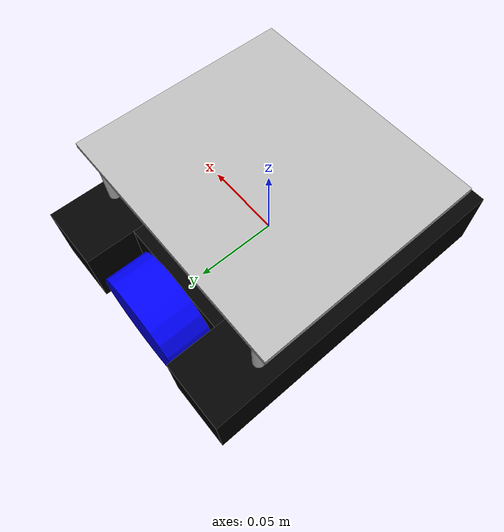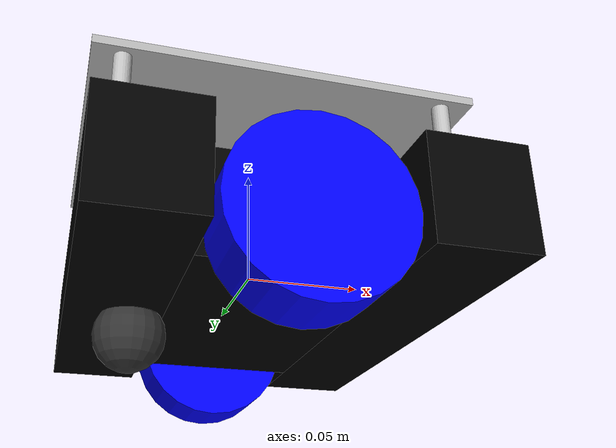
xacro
<?xml version="1.0"?>
<robot xmlns:xacro="http://www.ros.org/wiki/xacro" name="my_robot">

    <xacro:include filename="gazebo_control.xacro" />

    <material name="white">
        <color rgba="1 1 1 1" />
    </material>

    <material name="blue">
        <color rgba="0.0 0.0 1.0 1.0"/> <!-- Pure blue -->
    </material>

    <material name="grey">
        <color rgba="0.2 0.2 0.2 1.0"/>
    </material>

    <material name="light_grey">
    <color rgba="0.7 0.7 0.7 1.0"/>
    </material>

    <!-- Bright Silver (metallic look) -->
    <material name="silver">
        <color rgba="0.75 0.75 0.75 1.0"/>
    </material>

    <material name="black">
        <color rgba="0 0 0 1" />
    </material>

    <!-- ========== ROBOT DIMENSIONS ========== -->

    <xacro:property name="base_length" value="0.074" />
    <xacro:property name="base_width" value="0.136" />
    <xacro:property name="base_height" value="0.043" />

    <xacro:property name="wheel_radius" value="0.0345" />
    <xacro:property name="wheel_width" value="0.027" />

    <!-- Caster wheel position - at the back -->
    <xacro:property name="caster_x_offset" value="-0.05" /> <!-- -base_length/2 = -78mm -->
    <xacro:property name="fcaster_x_offset" value="0.05" /> <!-- -base_length/2 = -78mm -->
    <xacro:property name="caster_z_offset" value="-0.030" /> <!-- below base -->

    <!-- ========== CYLINDER MACRO ========== -->
    <xacro:macro name="vertical_cylinder" params="name x y z color">
        <link name="${name}">
        <visual>
            <geometry>
            <cylinder length="0.038" radius="0.0035"/>
            </geometry>
            <material name="${color}"/>
        </visual>
        <collision>
            <geometry>
            <cylinder length="0.038" radius="0.0035"/>
            </geometry>
        </collision>
        <inertial>
            <mass value="0.05"/>
            <inertia ixx="0.00001" ixy="0.0" ixz="0.0" iyy="0.00001" iyz="0.0" izz="0.00001"/>
        </inertial>
        </link>

        <joint name="${name}_joint" type="fixed">
        <parent link="base_link"/>
        <child link="${name}"/>
        <origin xyz="${x} ${y} ${z}" rpy="0 0 0"/>
        </joint>
    </xacro:macro>

    <!-- ========== BASE LINK ========== -->
    <link name="base_link">
        <visual>

        <geometry>
            <box size="${base_length} ${base_width} ${base_height}"/>
        </geometry>
        <material name="black"/>
        </visual>

        <collision>
        <geometry>
            <box size="${base_length} ${base_width} ${base_height}"/>
        </geometry>
        </collision>

        <inertial>
        <mass value="1.0"/>  <!-- 1kg mass -->
        <inertia ixx="0.001" ixy="0.0" ixz="0.0"
                iyy="0.001" iyz="0.0" izz="0.001"/>
        </inertial>
    </link>
    <gazebo reference="base_link">
        <material>Gazebo/Black</material>
    </gazebo>

    <!-- ========== TOP PLATE ========== -->
    <link name="top_plate">
    <visual>
        <geometry>
        <box size="0.154 0.136 0.0035"/>
        </geometry>
        <material name="light_grey"/>
    </visual>

    <collision>
        <geometry>
        <box size="0.154 0.136 0.0035"/>
        </geometry>
    </collision>

    <inertial>
        <mass value="0.05"/>  <!-- 50g for the block -->
        <inertia ixx="0.0001" ixy="0.0" ixz="0.0"
                iyy="0.0001" iyz="0.0" izz="0.0001"/>
    </inertial>
    </link>

    <joint name="top_Plate_joint" type="fixed">
    <parent link="base_link"/>  <!-- Attached to main chassis -->
    <child link="top_plate"/>
    <origin xyz="0 0 0.060" rpy="0 0 0"/>
    </joint>
    <gazebo reference="top_plate">
        <material>Gazebo/Grey</material>
    </gazebo>

    <!-- Front Left -->
    <xacro:vertical_cylinder name="front_left_cylinder" x="0.065" y="0.062" z="0.040" color="silver"/>
    <!-- Front Right -->
    <xacro:vertical_cylinder name="front_right_cylinder" x="0.065" y="-0.062" z="0.040" color="silver"/>
    <!-- Rear Left -->
    <xacro:vertical_cylinder name="rear_left_cylinder" x="-0.065" y="0.062" z="0.040" color="silver"/>
    <!-- Rear Right -->
    <xacro:vertical_cylinder name="rear_right_cylinder" x="-0.065" y="-0.062" z="0.040" color="silver"/>
    <gazebo reference="front_left_cylinder">
        <material>Gazebo/Silver</material>
    </gazebo>
    <gazebo reference="front_right_cylinder">
        <material>Gazebo/Silver</material>
    </gazebo>
    <gazebo reference="rear_left_cylinder">
        <material>Gazebo/Silver</material>
    </gazebo>
    <gazebo reference="rear_left_cylinder">
        <material>Gazebo/Silver</material>
    </gazebo>

    <!-- ========== FRONT BLOCK ========== -->
    <link name="front_block">
    <visual>
        <geometry>
        <box size="0.040 0.196 0.043"/>  <!-- 40mm x 30mm x 43mm -->
        </geometry>
        <material name="black"/>
    </visual>

    <collision>
        <geometry>
        <box size="0.040 0.030 0.043"/>
        </geometry>
    </collision>

    <inertial>
        <mass value="0.05"/>  <!-- 50g for the block -->
        <inertia ixx="0.0001" ixy="0.0" ixz="0.0"
                iyy="0.0001" iyz="0.0" izz="0.0001"/>
    </inertial>
    </link>

    <joint name="front_block_joint" type="fixed">
    <parent link="base_link"/>  <!-- Attached to main chassis -->
    <child link="front_block"/>
    <origin xyz="0.057 0.0 0" rpy="0 0 0"/>
    </joint>
    <gazebo reference="front_block">
        <material>Gazebo/Black</material>
    </gazebo>

     <!-- ========== REAR BLOCK ========== -->
    <link name="rear_block">
    <visual>
        <geometry>
        <box size="0.040 0.196 0.043"/>
        </geometry>
        <material name="black"/>
    </visual>

    <collision>
        <geometry>
        <box size="0.040 0.030 0.043"/>
        </geometry>
    </collision>

    <inertial>
        <mass value="0.05"/>  <!-- 50g for the block -->
        <inertia ixx="0.0001" ixy="0.0" ixz="0.0"
                iyy="0.0001" iyz="0.0" izz="0.0001"/>
    </inertial>
    </link>

    <joint name="rear_block_joint" type="fixed">
    <parent link="base_link"/>  <!-- Attached to main chassis -->
    <child link="rear_block"/>
    <origin xyz="-0.057 0.0 0" rpy="0 0 0"/>
    </joint>
    <gazebo reference="rear_block">
        <material>Gazebo/Black</material>
    </gazebo>

    <!-- ========== LEFT WHEEL ========== -->
    <link name="left_wheel">
        <visual>
        <geometry>
            <cylinder radius="${wheel_radius}" length="${wheel_width}"/>
        </geometry>
        <material name="blue"/>
        </visual>

        <collision>
        <geometry>
            <cylinder radius="${wheel_radius}" length="${wheel_width}"/>
        </geometry>
        </collision>

        <inertial>
        <mass value="0.1"/>  <!-- 100g per wheel -->
        <inertia ixx="0.000036" ixy="0.0" ixz="0.0"
                iyy="0.000036" iyz="0.0" izz="0.000060"/>
        </inertial>
    </link>

    <joint name="left_wheel_joint" type="continuous">
        <parent link="base_link"/>
        <child link="left_wheel"/>
        <origin xyz="0 0.0815 -0.01" rpy="-${pi/2} 0 0"/>
        <axis xyz="0 0 1"/>
    </joint>
    <gazebo reference="left_wheel">
        <material>Gazebo/Blue</material>
    </gazebo>

    <!-- ========== RIGHT WHEEL ========== -->
    <link name="right_wheel">
        <visual>
        <geometry>
            <cylinder radius="${wheel_radius}" length="${wheel_width}"/>
        </geometry>
        <material name="blue"/>
        </visual>

        <collision>
        <geometry>
            <cylinder radius="${wheel_radius}" length="${wheel_width}"/>
        </geometry>
        </collision>

        <inertial>
        <mass value="0.1"/>  <!-- 100g wheel -->
        <inertia ixx="0.000036" ixy="0.0" ixz="0.0"
                iyy="0.000036" iyz="0.0" izz="0.000060"/>
        </inertial>
    </link>

    <joint name="right_wheel_joint" type="continuous">
        <parent link="base_link"/>
        <child link="right_wheel"/>
        <origin xyz="0 -0.0815 -0.01" rpy="${pi/2} 0 0"/>
        <axis xyz="0 0 -1"/>
    </joint>
    <gazebo reference="right_wheel">
        <material>Gazebo/Blue</material>
    </gazebo>

    <!-- ========== CASTER WHEEL ========== -->
    <link name="caster_wheel">
        <visual>
        <geometry>
            <sphere radius="0.015"/>  <!-- 15mm radius -->
        </geometry>
        <material name="grey"/>
        </visual>

        <collision>
        <geometry>
            <sphere radius="0.015"/>
        </geometry>
        </collision>

        <inertial>
        <mass value="0.05"/>
        <inertia ixx="0.00001" ixy="0.0" ixz="0.0"
                iyy="0.00001" iyz="0.0" izz="0.00001"/>
        </inertial>
    </link>

    <joint name="caster_wheel_joint" type="fixed">
        <parent link="base_link"/>
        <child link="caster_wheel"/>
        <origin xyz="${caster_x_offset} 0 ${caster_z_offset}" rpy="0 0 0"/>
    </joint>
    <gazebo reference="caster_wheel">
        <material>Gazebo/Silver</material>
    </gazebo>

</robot>
